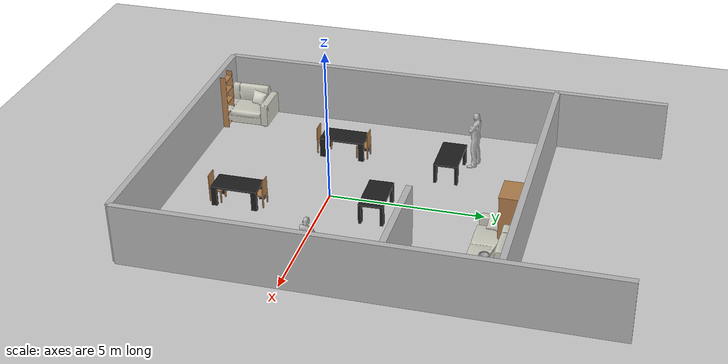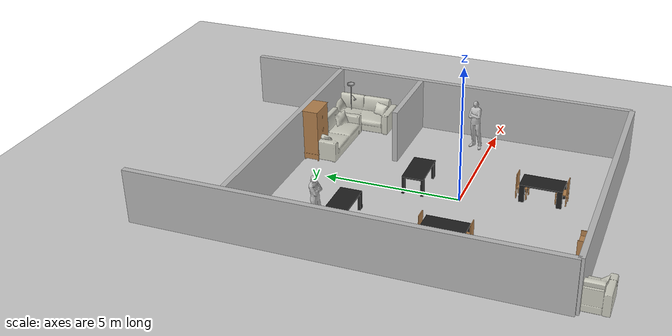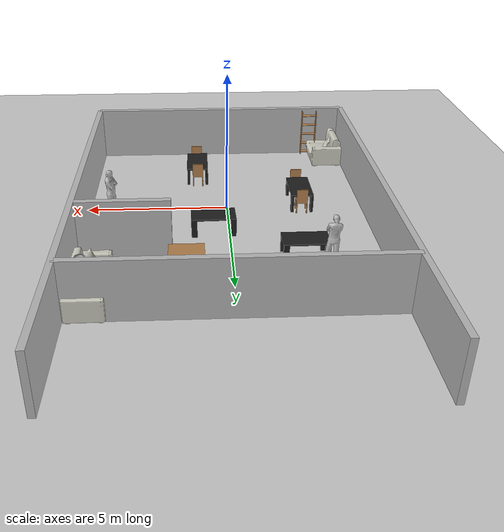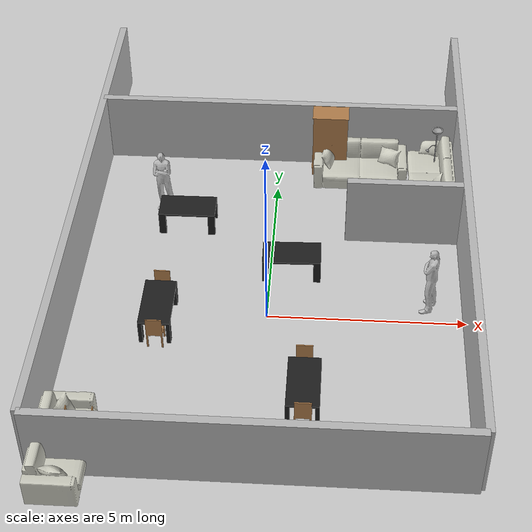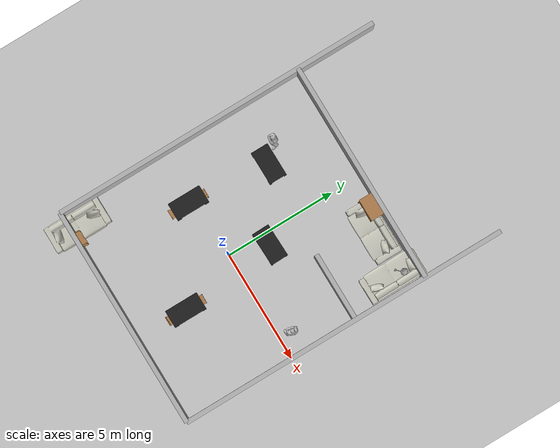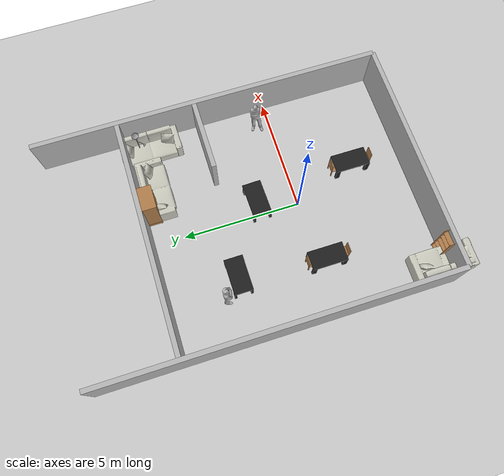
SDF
<sdf version="1.6">
 <world name="default">
  <physics name="default_physics" default="0" type="ode">
   <ode>
    <solver>
     <type>quick</type>
     <iters>20</iters>
     <sor>1</sor>
     <use_dynamic_moi_rescaling>0</use_dynamic_moi_rescaling>
    </solver>
    <constraints>
     <cfm>0</cfm>
     <erp>0.2</erp>
     <contact_max_correcting_vel>100</contact_max_correcting_vel>
     <contact_surface_layer>0</contact_surface_layer>
    </constraints>
   </ode>
   <real_time_update_rate>1000</real_time_update_rate>
   <max_step_size>0.001</max_step_size>
   <real_time_factor>1</real_time_factor>
  </physics>
  <light name="sun" type="directional">
   <pose>0 0 10 0 -0 0</pose>
   <diffuse>0.8 0.8 0.8 1</diffuse>
   <specular>0.1 0.1 0.1 1</specular>
   <attenuation>
    <range>1000</range>
    <constant>0.9</constant>
    <linear>0.01</linear>
    <quadratic>0.001</quadratic>
   </attenuation>
   <direction>-0.5 0.5 -1</direction>
  </light>
  <model name="ground_plane">
   <static>1</static>
   <link name="link">
    <collision name="collision">
     <geometry><plane><normal>0 0 1</normal><size>100 100</size></plane></geometry>
     <surface><friction><ode><mu>100</mu><mu2>50</mu2></ode></friction></surface>
    </collision>
    <visual name="visual">
     <cast_shadows>0</cast_shadows>
     <geometry><plane><normal>0 0 1</normal><size>100 100</size></plane></geometry>
     <material>
      <script><uri>file://media/materials/scripts/gazebo.material</uri><name>Gazebo/Grey</name></script>
     </material>
    </visual>
   </link>
  </model>
  <model name="wall_1_model">
   <pose>0 -5 1 0 -0 0</pose>
   <static>1</static>
   <link name="wall_1_body">
    <inertial>
     <mass>1</mass>
     <inertia><ixx>1</ixx><ixy>0</ixy><ixz>0</ixz><iyy>1</iyy><iyz>0</iyz><izz>1</izz></inertia>
    </inertial>
    <collision name="collision"><geometry><box><size>10 0.2 2</size></box></geometry></collision>
    <visual name="visual"><geometry><box><size>10 0.2 2</size></box></geometry></visual>
   </link>
  </model>
  <model name="wall_2_model">
   <pose>0 6.39551 1 0 -0 0</pose>
   <static>1</static>
   <link name="wall_2_body">
    <inertial>
     <mass>1</mass>
     <inertia><ixx>1</ixx><ixy>0</ixy><ixz>0</ixz><iyy>1</iyy><iyz>0</iyz><izz>1</izz></inertia>
    </inertial>
    <collision name="collision"><geometry><box><size>10 0.2 2</size></box></geometry></collision>
    <visual name="visual"><geometry><box><size>10 0.2 2</size></box></geometry></visual>
   </link>
  </model>
  <model name="wall_3_model">
   <pose>-5 2.5 1 0 -0 0</pose>
   <static>1</static>
   <link name="wall_3_body">
    <inertial>
     <mass>1</mass>
     <inertia><ixx>1</ixx><ixy>0</ixy><ixz>0</ixz><iyy>1</iyy><iyz>0</iyz><izz>1</izz></inertia>
    </inertial>
    <collision name="collision"><geometry><box><size>0.2 15 2</size></box></geometry></collision>
    <visual name="visual"><geometry><box><size>0.2 15 2</size></box></geometry></visual>
   </link>
  </model>
  <model name="wall_4_model">
   <pose>5 2.5 1 0 -0 0</pose>
   <static>1</static>
   <link name="wall_4_body">
    <inertial>
     <mass>1</mass>
     <inertia><ixx>1</ixx><ixy>0</ixy><ixz>0</ixz><iyy>1</iyy><iyz>0</iyz><izz>1</izz></inertia>
    </inertial>
    <collision name="collision"><geometry><box><size>0.2 15 2</size></box></geometry></collision>
    <visual name="visual"><geometry><box><size>0.2 15 2</size></box></geometry></visual>
   </link>
  </model>
  <model name="wall_6_model">
   <pose>3.40074 3.06779 1 0 -0 0</pose>
   <static>1</static>
   <link name="wall_6_body">
    <inertial>
     <mass>1</mass>
     <inertia><ixx>1</ixx><ixy>0</ixy><ixz>0</ixz><iyy>1</iyy><iyz>0</iyz><izz>1</izz></inertia>
    </inertial>
    <collision name="collision"><geometry><box><size>3 0.2 2</size></box></geometry></collision>
    <visual name="visual"><geometry><box><size>3 0.2 2</size></box></geometry></visual>
   </link>
  </model>
  <model name="dining_chair">
   <static>1</static>
   <link name="link">
    <collision name="colision1">
     <geometry><mesh><uri>model://dining_chair/meshes/dining_chair.stl</uri><scale>1 1 1</scale></mesh></geometry>
    </collision>
    <visual name="visual1">
     <geometry><mesh><uri>model://dining_chair/meshes/dining_chair.stl</uri><scale>1 1 1</scale></mesh></geometry>
     <material>
      <script><uri>file://media/materials/scripts/gazebo.material</uri><name>Gazebo/Wood</name></script>
     </material>
    </visual>
    <velocity_decay><linear>0</linear><angular>0</angular></velocity_decay>
   </link>
   <pose>0.84506 -3.5625 0.01 0 -0 0</pose>
  </model>
  <model name="kitchen_table">
   <static>1</static>
   <link name="link">
    <collision name="colision1">
     <geometry>
      <mesh><uri>model://kitchen_table/meshes/kitchen_table1.stl</uri><scale>1 1 1</scale></mesh>
     </geometry>
    </collision>
    <visual name="visual1">
     <geometry>
      <mesh><uri>model://kitchen_table/meshes/kitchen_table1.stl</uri><scale>1 1 1</scale></mesh>
     </geometry>
     <material>
      <script><uri>file://media/materials/scripts/gazebo.material</uri><name>Gazebo/FlatBlack</name></script>
     </material>
    </visual>
    <velocity_decay><linear>0</linear><angular>0</angular></velocity_decay>
   </link>
   <pose>0.620782 -3.43719 0 0 -0 0</pose>
  </model>
  <model name="wardrobe">
   <static>1</static>
   <link name="link">
    <collision name="colision1">
     <geometry><mesh><uri>model://wardrobe/meshes/wardrobe.stl</uri><scale>1 1 1</scale></mesh></geometry>
    </collision>
    <visual name="visual1">
     <geometry><mesh><uri>model://wardrobe/meshes/wardrobe.stl</uri><scale>1 1 1</scale></mesh></geometry>
     <material>
      <script><uri>file://media/materials/scripts/gazebo.material</uri><name>Gazebo/WoodPallet</name></script>
     </material>
    </visual>
    <velocity_decay><linear>0</linear><angular>0</angular></velocity_decay>
   </link>
   <pose>0.907609 5.70277 0 0 -0 0</pose>
  </model>
  <model name="closet">
   <static>1</static>
   <link name="link">
    <collision name="colision1">
     <geometry><mesh><uri>model://closet/meshes/closet.stl</uri><scale>1 1 1</scale></mesh></geometry>
    </collision>
    <visual name="visual1">
     <geometry><mesh><uri>model://closet/meshes/closet.stl</uri><scale>1 1 1</scale></mesh></geometry>
     <material>
      <script><uri>file://media/materials/scripts/gazebo.material</uri><name>Gazebo/WoodFloor</name></script>
     </material>
    </visual>
    <velocity_decay><linear>0</linear><angular>0</angular></velocity_decay>
   </link>
   <pose>-4 -5 0 0 -0 0</pose>
  </model>
  <model name="sofa">
   <static>1</static>
   <link name="link">
    <collision name="colision1">
     <geometry><mesh><uri>model://sofa/meshes/sofa.stl</uri><scale>1 1 1</scale></mesh></geometry>
    </collision>
    <visual name="visual1">
     <geometry><mesh><uri>model://sofa/meshes/sofa.stl</uri><scale>1 1 1</scale></mesh></geometry>
     <material>
      <script><uri>file://media/materials/scripts/gazebo.material</uri><name>Gazebo/PaintedWall</name></script>
     </material>
    </visual>
    <velocity_decay><linear>0</linear><angular>0</angular></velocity_decay>
   </link>
   <pose>4.23919 5.32265 0 0 0 -1.56352</pose>
  </model>
  <model name="floor_lamp_0">
   <static>1</static>
   <link name="link">
    <collision name="colision1">
     <geometry><mesh><uri>model://floor_lamp/meshes/floor_lamp.stl</uri><scale>1 1 1</scale></mesh></geometry>
    </collision>
    <visual name="visual1">
     <geometry><mesh><uri>model://floor_lamp/meshes/floor_lamp.stl</uri><scale>1 1 1</scale></mesh></geometry>
     <material>
      <script><uri>file://media/materials/scripts/gazebo.material</uri><name>Gazebo/Grey</name></script>
     </material>
    </visual>
    <velocity_decay><linear>0</linear><angular>0</angular></velocity_decay>
   </link>
   <pose>4.36245 5.78716 0 0 0 -2.34109</pose>
  </model>
  <model name="male03">
   <link name="link">
    <inertial>
     <mass>20</mass>
     <inertia><ixx>0</ixx><ixy>0</ixy><ixz>0</ixz><iyy>0</iyy><iyz>0</iyz><izz>0</izz></inertia>
    </inertial>
    <collision name="collision">
     <geometry>
      <mesh><uri>model://citizen_extras_male_03/meshes/mesh.dae</uri><scale>1 1 1</scale></mesh>
     </geometry>
    </collision>
    <visual name="visual">
     <geometry>
      <mesh><uri>model://citizen_extras_male_03/meshes/mesh.dae</uri><scale>1 1 1</scale></mesh>
     </geometry>
    </visual>
   </link>
   <pose>4 0.53 0.010908 0.012579 0.0023 -1.718</pose>
  </model>
  <light name="male03light" type="point">
   <pose>3.6 0.53 1.6 0 -0 0</pose>
   <diffuse>0.5 0.5 0.5 1</diffuse>
   <specular>0.1 0.1 0.1 1</specular>
   <attenuation>
    <range>1</range>
    <linear>0.01</linear>
    <constant>0.3</constant>
    <quadratic>0</quadratic>
   </attenuation>
   <direction>0 0 -1</direction>
   <spot><inner_angle>0.6</inner_angle><outer_angle>0.8</outer_angle><falloff>1.2</falloff></spot>
   <cast_shadows>0</cast_shadows>
  </light>
  <light name="female02light" type="point">
   <pose>-2.5 -2.63 1.5 0 -0 0</pose>
   <diffuse>0.5 0.5 0.5 1</diffuse>
   <specular>0.1 0.1 0.1 1</specular>
   <attenuation>
    <range>1</range>
    <linear>0.01</linear>
    <constant>0.3</constant>
    <quadratic>0</quadratic>
   </attenuation>
   <direction>0 0 -1</direction>
   <spot><inner_angle>0.6</inner_angle><outer_angle>0.8</outer_angle><falloff>1.2</falloff></spot>
   <cast_shadows>0</cast_shadows>
  </light>
  <light name="female03light" type="point">
   <pose>-3 6.2 1.5 0 -0 0</pose>
   <diffuse>0.5 0.5 0.5 1</diffuse>
   <specular>0.1 0.1 0.1 1</specular>
   <attenuation>
    <range>1</range>
    <linear>0.01</linear>
    <constant>0.3</constant>
    <quadratic>0</quadratic>
   </attenuation>
   <direction>0 0 -1</direction>
   <spot><inner_angle>0.6</inner_angle><outer_angle>0.8</outer_angle><falloff>1.2</falloff></spot>
   <cast_shadows>0</cast_shadows>
  </light>
  <light name="female02bislight" type="point">
   <pose>3.8 6.7 1.5 0 -0 0</pose>
   <diffuse>0.5 0.5 0.5 1</diffuse>
   <specular>0.1 0.1 0.1 1</specular>
   <attenuation>
    <range>1</range>
    <linear>0.01</linear>
    <constant>0.3</constant>
    <quadratic>0</quadratic>
   </attenuation>
   <direction>0 0 -1</direction>
   <spot><inner_angle>0.6</inner_angle><outer_angle>0.8</outer_angle><falloff>1.2</falloff></spot>
   <cast_shadows>0</cast_shadows>
  </light>
  <model name="male03bis">
   <link name="link">
    <inertial>
     <mass>20</mass>
     <inertia><ixx>0</ixx><ixy>0</ixy><ixz>0</ixz><iyy>0</iyy><iyz>0</iyz><izz>0</izz></inertia>
    </inertial>
    <collision name="collision">
     <geometry>
      <mesh><uri>model://citizen_extras_male_03/meshes/mesh.dae</uri><scale>1 1 1</scale></mesh>
     </geometry>
    </collision>
    <visual name="visual">
     <geometry>
      <mesh><uri>model://citizen_extras_male_03/meshes/mesh.dae</uri><scale>1 1 1</scale></mesh>
     </geometry>
    </visual>
   </link>
   <pose>-2.99993 3.99987 0.010903 0.012548 0.002316 0.000161</pose>
  </model>
  <light name="male03bislight" type="point">
   <pose>-2.9 3.7 1.5 0 -0 0</pose>
   <diffuse>0.5 0.5 0.5 1</diffuse>
   <specular>0.1 0.1 0.1 1</specular>
   <attenuation>
    <range>1</range>
    <linear>0.01</linear>
    <constant>0.3</constant>
    <quadratic>0</quadratic>
   </attenuation>
   <direction>0 0 -1</direction>
   <spot><inner_angle>0.6</inner_angle><outer_angle>0.8</outer_angle><falloff>1.2</falloff></spot>
   <cast_shadows>0</cast_shadows>
  </light>
  <gravity>0 0 -9.81</gravity>
  <magnetic_field>6e-06 2.3e-05 -4.2e-05</magnetic_field>
  <atmosphere type="adiabatic"/>
  <scene><ambient>0.4 0.4 0.4 1</ambient><background>0.7 0.7 0.7 1</background><shadows>1</shadows></scene>
  <spherical_coordinates>
   <surface_model>EARTH_WGS84</surface_model>
   <latitude_deg>0</latitude_deg>
   <longitude_deg>0</longitude_deg>
   <elevation>0</elevation>
   <heading_deg>0</heading_deg>
  </spherical_coordinates>
  <model name="sofa_clone">
   <static>1</static>
   <link name="link">
    <collision name="colision1">
     <geometry><mesh><uri>model://sofa/meshes/sofa.stl</uri><scale>1 1 1</scale></mesh></geometry>
    </collision>
    <visual name="visual1">
     <geometry><mesh><uri>model://sofa/meshes/sofa.stl</uri><scale>1 1 1</scale></mesh></geometry>
     <material>
      <script><uri>file://media/materials/scripts/gazebo.material</uri><name>Gazebo/PaintedWall</name></script>
     </material>
    </visual>
    <velocity_decay><linear>0</linear><angular>0</angular></velocity_decay>
   </link>
   <pose>2.27628 5.59466 0 0 -0 0</pose>
  </model>
  <model name="kitchen_table_clone">
   <static>1</static>
   <link name="link">
    <collision name="colision1">
     <geometry>
      <mesh><uri>model://kitchen_table/meshes/kitchen_table1.stl</uri><scale>1 1 1</scale></mesh>
     </geometry>
    </collision>
    <visual name="visual1">
     <geometry>
      <mesh><uri>model://kitchen_table/meshes/kitchen_table1.stl</uri><scale>1 1 1</scale></mesh>
     </geometry>
     <material>
      <script><uri>file://media/materials/scripts/gazebo.material</uri><name>Gazebo/FlatBlack</name></script>
     </material>
    </visual>
    <velocity_decay><linear>0</linear><angular>0</angular></velocity_decay>
   </link>
   <pose>-3.09779 -1.05166 0 0 -0 0</pose>
  </model>
  <model name="kitchen_table_clone_0">
   <static>1</static>
   <link name="link">
    <collision name="colision1">
     <geometry>
      <mesh><uri>model://kitchen_table/meshes/kitchen_table1.stl</uri><scale>1 1 1</scale></mesh>
     </geometry>
    </collision>
    <visual name="visual1">
     <geometry>
      <mesh><uri>model://kitchen_table/meshes/kitchen_table1.stl</uri><scale>1 1 1</scale></mesh>
     </geometry>
     <material>
      <script><uri>file://media/materials/scripts/gazebo.material</uri><name>Gazebo/FlatBlack</name></script>
     </material>
    </visual>
    <velocity_decay><linear>0</linear><angular>0</angular></velocity_decay>
   </link>
   <pose>-3.10657 3.77787 0 0 0 -1.5658</pose>
  </model>
  <model name="kitchen_table_clone_1">
   <static>1</static>
   <link name="link">
    <collision name="colision1">
     <geometry>
      <mesh><uri>model://kitchen_table/meshes/kitchen_table1.stl</uri><scale>1 1 1</scale></mesh>
     </geometry>
    </collision>
    <visual name="visual1">
     <geometry>
      <mesh><uri>model://kitchen_table/meshes/kitchen_table1.stl</uri><scale>1 1 1</scale></mesh>
     </geometry>
     <material>
      <script><uri>file://media/materials/scripts/gazebo.material</uri><name>Gazebo/FlatBlack</name></script>
     </material>
    </visual>
    <velocity_decay><linear>0</linear><angular>0</angular></velocity_decay>
   </link>
   <pose>-0.228612 2.06411 0 0 0 -1.54546</pose>
  </model>
  <model name="dining_chair_clone">
   <static>1</static>
   <link name="link">
    <collision name="colision1">
     <geometry><mesh><uri>model://dining_chair/meshes/dining_chair.stl</uri><scale>1 1 1</scale></mesh></geometry>
    </collision>
    <visual name="visual1">
     <geometry><mesh><uri>model://dining_chair/meshes/dining_chair.stl</uri><scale>1 1 1</scale></mesh></geometry>
     <material>
      <script><uri>file://media/materials/scripts/gazebo.material</uri><name>Gazebo/Wood</name></script>
     </material>
    </visual>
    <velocity_decay><linear>0</linear><angular>0</angular></velocity_decay>
   </link>
   <pose>1.21452 -1.78401 0.01 0 -0 3.12384</pose>
  </model>
  <model name="sofa_clone_0">
   <static>1</static>
   <link name="link">
    <collision name="colision1">
     <geometry><mesh><uri>model://sofa/meshes/sofa.stl</uri><scale>1 1 1</scale></mesh></geometry>
    </collision>
    <visual name="visual1">
     <geometry><mesh><uri>model://sofa/meshes/sofa.stl</uri><scale>1 1 1</scale></mesh></geometry>
     <material>
      <script><uri>file://media/materials/scripts/gazebo.material</uri><name>Gazebo/PaintedWall</name></script>
     </material>
    </visual>
    <velocity_decay><linear>0</linear><angular>0</angular></velocity_decay>
   </link>
   <pose>-4.24162 -4.67833 0 0 -0 1.57</pose>
  </model>
  <model name="dining_chair_clone_0">
   <static>1</static>
   <link name="link">
    <collision name="colision1">
     <geometry><mesh><uri>model://dining_chair/meshes/dining_chair.stl</uri><scale>1 1 1</scale></mesh></geometry>
    </collision>
    <visual name="visual1">
     <geometry><mesh><uri>model://dining_chair/meshes/dining_chair.stl</uri><scale>1 1 1</scale></mesh></geometry>
     <material>
      <script><uri>file://media/materials/scripts/gazebo.material</uri><name>Gazebo/Wood</name></script>
     </material>
    </visual>
    <velocity_decay><linear>0</linear><angular>0</angular></velocity_decay>
   </link>
   <pose>-2.86172 -1.19999 0.01 0 -0 0</pose>
  </model>
  <model name="dining_chair_clone_clone">
   <static>1</static>
   <link name="link">
    <collision name="colision1">
     <geometry><mesh><uri>model://dining_chair/meshes/dining_chair.stl</uri><scale>1 1 1</scale></mesh></geometry>
    </collision>
    <visual name="visual1">
     <geometry><mesh><uri>model://dining_chair/meshes/dining_chair.stl</uri><scale>1 1 1</scale></mesh></geometry>
     <material>
      <script><uri>file://media/materials/scripts/gazebo.material</uri><name>Gazebo/Wood</name></script>
     </material>
    </visual>
    <velocity_decay><linear>0</linear><angular>0</angular></velocity_decay>
   </link>
   <pose>-2.46763 0.549382 0.01 0 -0 3.12384</pose>
  </model>
 </world>
</sdf>
